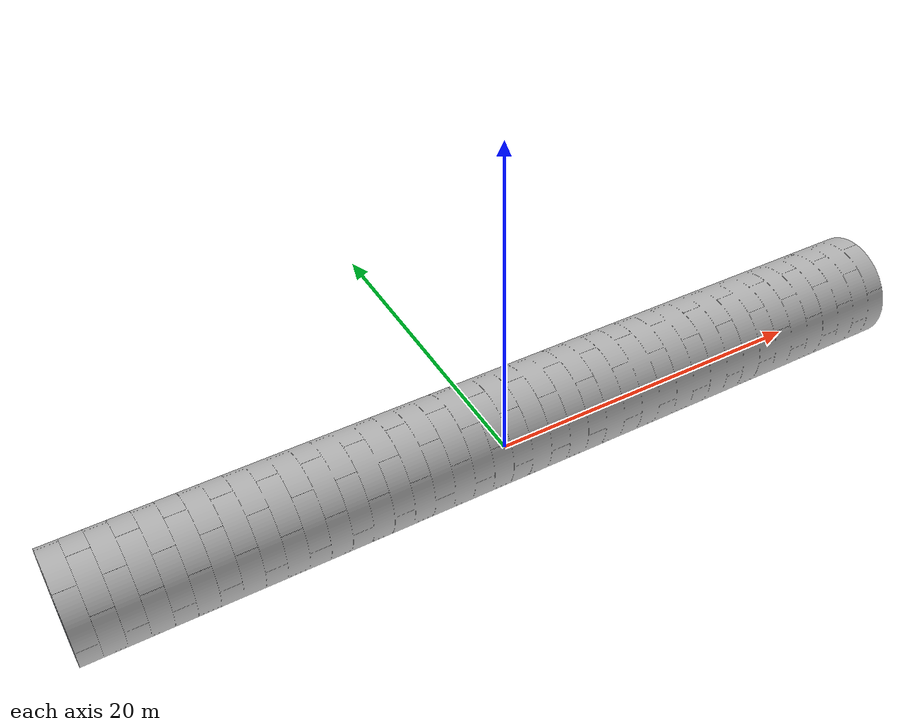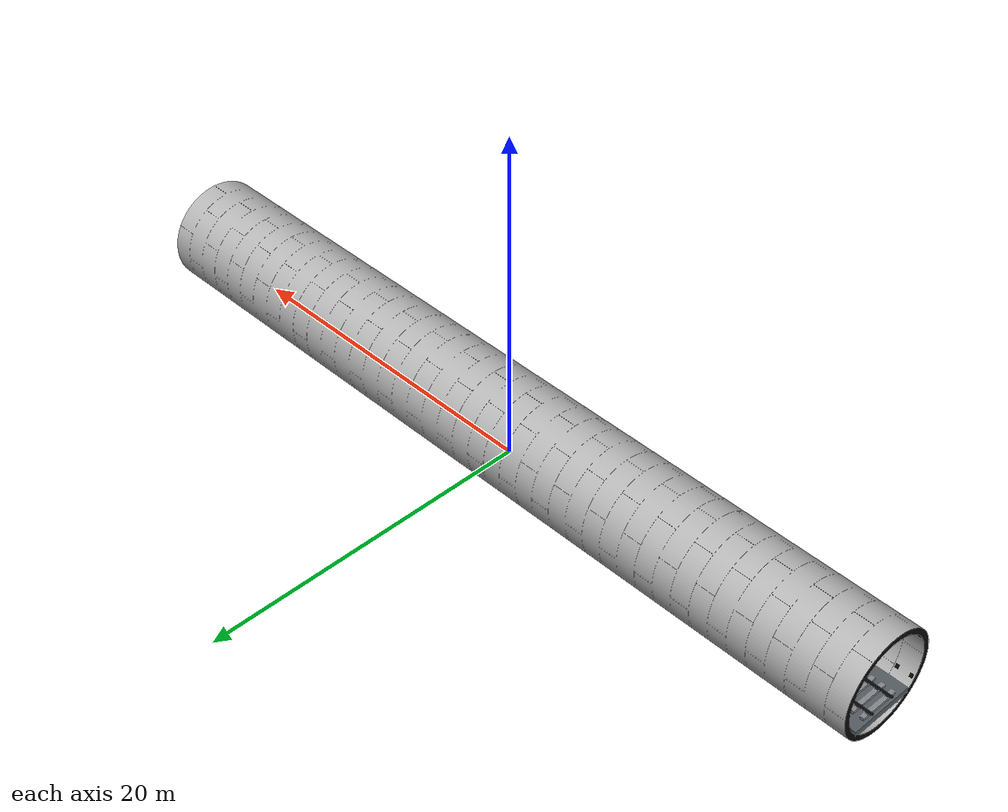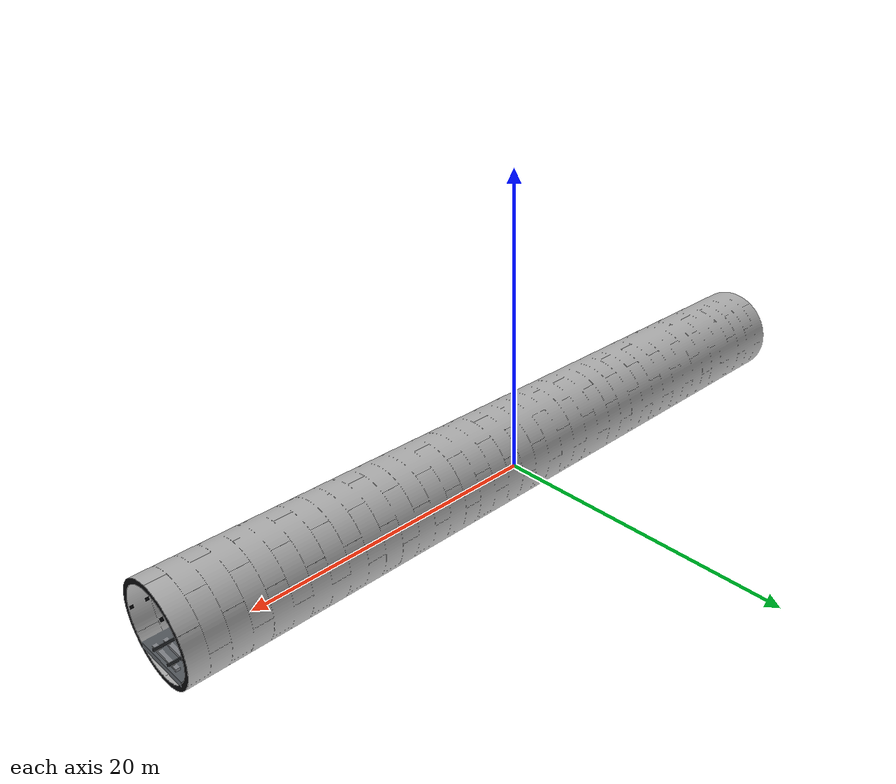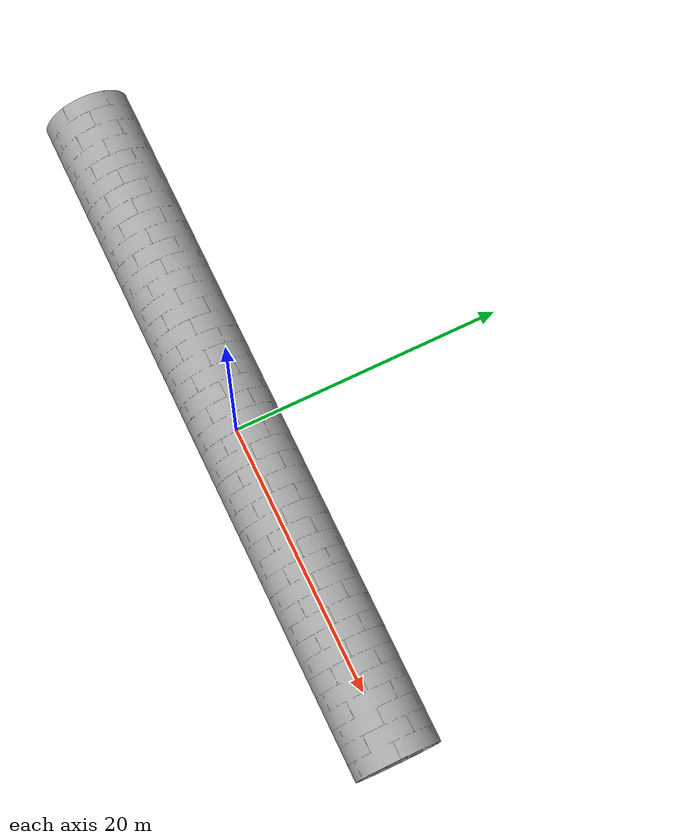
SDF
<?xml version="1.0"?>
<sdf version="1.7">
  <world name="subway_tunnel">
    <physics type="ode">
      <max_step_size>0.001</max_step_size>
      <real_time_factor>1</real_time_factor>
      <real_time_update_rate>1000</real_time_update_rate>
    </physics>

    <scene>
      <ambient>0.60 0.61 0.63 1</ambient>
      <background>0.025 0.027 0.032 1</background>
      <shadows>false</shadows>
      <grid>false</grid>
      <origin_visual>false</origin_visual>
    </scene>

    <gui fullscreen="0">
      <camera name="user_camera">
        <pose>-13 1.4 1.7 0 0.04 3.14159265</pose>
        <view_controller>orbit</view_controller>
        <projection_type>perspective</projection_type>
      </camera>
    </gui>

    <light name="soft_fill" type="directional">
      <cast_shadows>false</cast_shadows>
      <pose>0 0 8 0 0 0</pose>
      <diffuse>0.18 0.18 0.18 1</diffuse>
      <specular>0.08 0.08 0.08 1</specular>
      <direction>-0.35 0 -1</direction>
    </light>

    <light name="tunnel_fill_m18" type="point">
      <cast_shadows>false</cast_shadows>
      <pose>-18 0 3.45 0 0 0</pose>
      <diffuse>0.16 0.17 0.18 1</diffuse>
      <specular>0.02 0.02 0.02 1</specular>
      <attenuation><range>14</range><constant>0.8</constant><linear>0.08</linear><quadratic>0.02</quadratic></attenuation>
    </light>
    <light name="tunnel_fill_m9" type="point">
      <cast_shadows>false</cast_shadows>
      <pose>-9 0 3.45 0 0 0</pose>
      <diffuse>0.16 0.17 0.18 1</diffuse>
      <specular>0.02 0.02 0.02 1</specular>
      <attenuation><range>14</range><constant>0.8</constant><linear>0.08</linear><quadratic>0.02</quadratic></attenuation>
    </light>
    <light name="tunnel_fill_0" type="point">
      <cast_shadows>false</cast_shadows>
      <pose>0 0 3.45 0 0 0</pose>
      <diffuse>0.16 0.17 0.18 1</diffuse>
      <specular>0.02 0.02 0.02 1</specular>
      <attenuation><range>14</range><constant>0.8</constant><linear>0.08</linear><quadratic>0.02</quadratic></attenuation>
    </light>
    <light name="tunnel_fill_9" type="point">
      <cast_shadows>false</cast_shadows>
      <pose>9 0 3.45 0 0 0</pose>
      <diffuse>0.16 0.17 0.18 1</diffuse>
      <specular>0.02 0.02 0.02 1</specular>
      <attenuation><range>14</range><constant>0.8</constant><linear>0.08</linear><quadratic>0.02</quadratic></attenuation>
    </light>
    <light name="tunnel_fill_18" type="point">
      <cast_shadows>false</cast_shadows>
      <pose>18 0 3.45 0 0 0</pose>
      <diffuse>0.16 0.17 0.18 1</diffuse>
      <specular>0.02 0.02 0.02 1</specular>
      <attenuation><range>14</range><constant>0.8</constant><linear>0.08</linear><quadratic>0.02</quadratic></attenuation>
    </light>

    <include>
      <uri>model://subway_tunnel</uri>
      <name>subway_tunnel</name>
      <pose>0 0 1.75 0 0 0</pose>
      <static>true</static>
    </include>
  </world>
</sdf>

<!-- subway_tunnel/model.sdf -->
<sdf version="1.7">
  <model name="subway_tunnel">
    <static>true</static>
    <link name="tunnel">
      <visual name="visual">
        <geometry>
          <mesh>
            <uri>model://subway_tunnel/meshes/tunnel.dae</uri>
            <scale>1 1 1</scale>
          </mesh>
        </geometry>
        <cast_shadows>true</cast_shadows>
      </visual>

      <collision name="collision">
        <geometry>
          <mesh>
            <uri>model://subway_tunnel/meshes/tunnel_collision.stl</uri>
            <scale>1 1 1</scale>
          </mesh>
        </geometry>
        <surface>
          <friction>
            <ode>
              <mu>1</mu>
              <mu2>1</mu2>
            </ode>
          </friction>
          <contact>
            <ode>
              <kp>1e+13</kp>
              <kd>1</kd>
              <max_vel>0.01</max_vel>
              <min_depth>0</min_depth>
            </ode>
          </contact>
        </surface>
      </collision>
    </link>
  </model>
</sdf>
